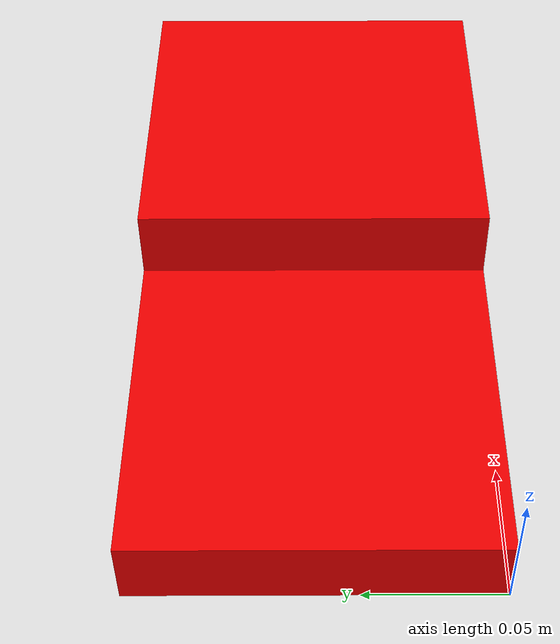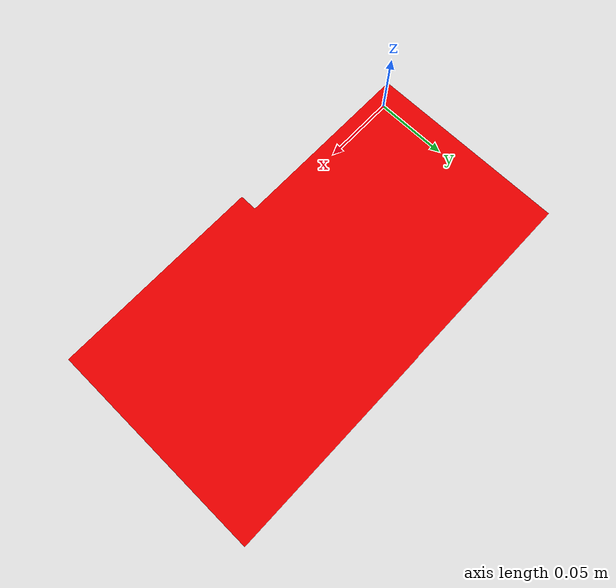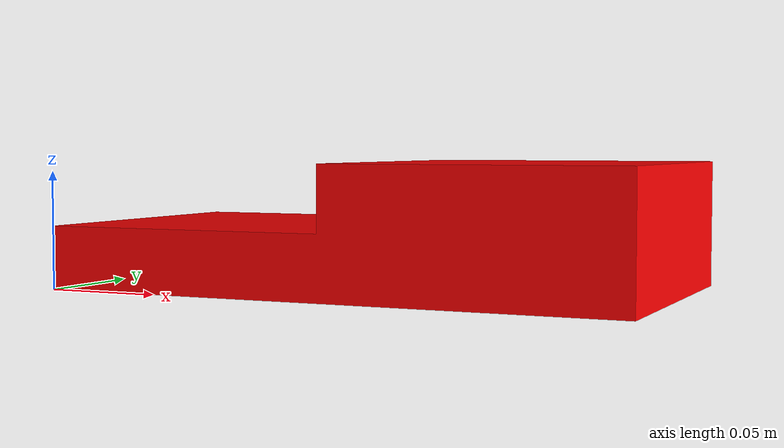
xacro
<?xml version="1.0"?>

<robot name="Zona_Ensamble">
      <link name="world">
      </link>

      <joint name="joint_name" type="fixed">
        <parent link="world"/>
        <child link="ensamble"/>
        <origin xyz="0.0 0.0 0.0" rpy="0.0 0.0 0.0"/>
      </joint>

      <link name="ensamble">
        <inertial>
          <origin xyz="0.0 0.0 0.0" rpy="0.0 0.0 0.0" />
          <mass value="0.882" />
          <inertia  ixx="0.001438432" ixy="0.0"  ixz="-0.000330708"  iyy="0.004406841"  iyz="0.0"  izz="0.005452392" />
        </inertial>
        <visual>
          <origin rpy="0.0 0.0 0.0" xyz="0.0 0.0 0.0" />
         <geometry>
           <mesh filename="package://ProyectoInt/meshes/ZonaEnsamble.stl" />
         </geometry>
         <material name="red">
          <color rgba="1.0 0.0 0.0 1.0"/>
         </material>
       </visual>
       <collision>
         <origin xyz="0.0 0.0 0.0" rpy="0.0 0.0 0.0" />
         <geometry>
           <mesh filename="package://ProyectoInt/meshes/ZonaEnsamble.stl"/>
         </geometry>
       </collision>
     </link>
     <gazebo reference="ensamble">
       <material>Gazebo/Red</material>
     </gazebo>
</robot>
